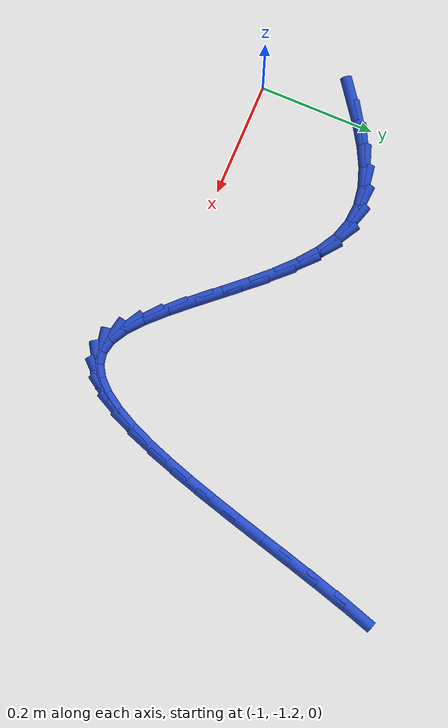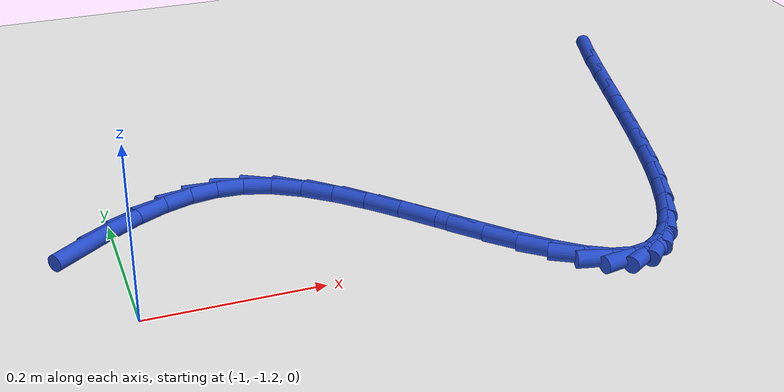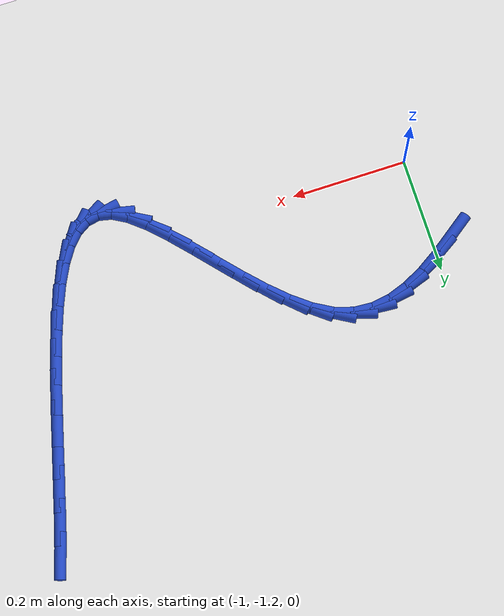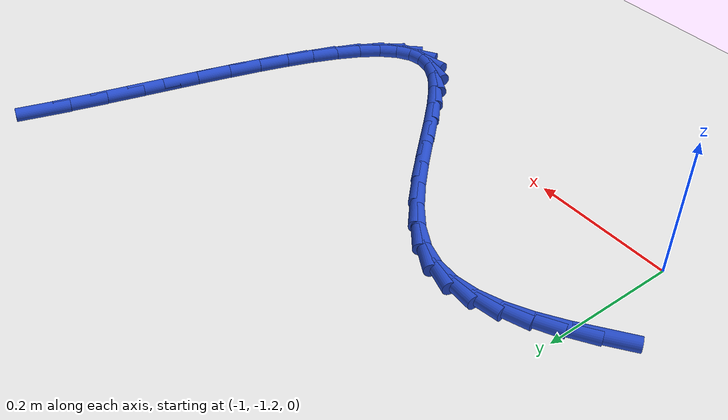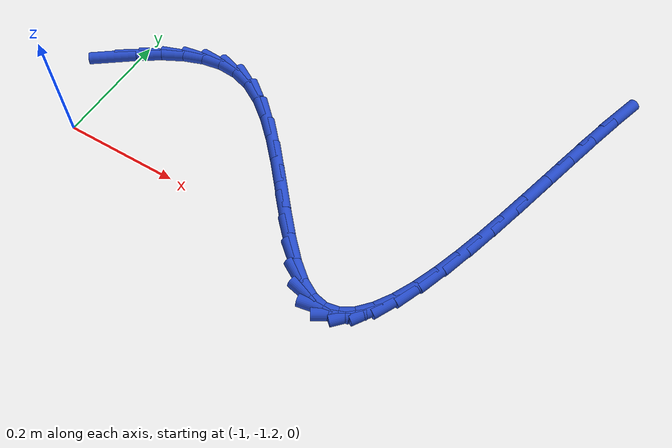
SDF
<sdf version="1.6">
 <world name="default">
  <model name="ground_plane">
   <static>1</static>
   <link name="link">
    <collision name="collision">
     <geometry><plane><normal>0 0 1</normal><size>100 100</size></plane></geometry>
     <surface><friction><ode><mu>100</mu><mu2>50</mu2></ode></friction></surface>
    </collision>
    <visual name="visual">
     <cast_shadows>0</cast_shadows>
     <geometry><plane><normal>0 0 1</normal><size>100 100</size></plane></geometry>
     <material>
      <script><uri>file://media/materials/scripts/gazebo.material</uri><name>Gazebo/WhiteGlow</name></script>
     </material>
    </visual>
   </link>
  </model>
  <model name="line">
   <link name="link_150">
    <pose>-1.036539433839793 -1.0515958325497545 0.01 0 1.57 0.6332076237584433</pose>
    <collision name="collision">
     <geometry><cylinder><radius>0.01</radius><length>0.08</length></cylinder></geometry>
    </collision>
    <visual name="visual">
     <material>
      <script><name>Gazebo/Blue</name><uri>file://media/materials/scripts/gazebo.material</uri></script>
     </material>
     <geometry><cylinder><radius>0.01</radius><length>0.08</length></cylinder></geometry>
    </visual>
   </link>
   <link name="link_151">
    <pose>-1.0014505979394939 -1.0258392555172586 0.01 0 1.57 0.5683706793248513</pose>
    <collision name="collision">
     <geometry><cylinder><radius>0.01</radius><length>0.08</length></cylinder></geometry>
    </collision>
    <visual name="visual">
     <material>
      <script><name>Gazebo/Blue</name><uri>file://media/materials/scripts/gazebo.material</uri></script>
     </material>
     <geometry><cylinder><radius>0.01</radius><length>0.08</length></cylinder></geometry>
    </visual>
   </link>
   <link name="link_152">
    <pose>-0.9670756667134821 -1.0038849413313753 0.01 0 1.57 0.47170963096601487</pose>
    <collision name="collision">
     <geometry><cylinder><radius>0.01</radius><length>0.08</length></cylinder></geometry>
    </collision>
    <visual name="visual">
     <material>
      <script><name>Gazebo/Blue</name><uri>file://media/materials/scripts/gazebo.material</uri></script>
     </material>
     <geometry><cylinder><radius>0.01</radius><length>0.08</length></cylinder></geometry>
    </visual>
   </link>
   <link name="link_153">
    <pose>-0.9332638066165657 -0.986636884806512 0.01 0 1.57 0.33528544571596725</pose>
    <collision name="collision">
     <geometry><cylinder><radius>0.01</radius><length>0.08</length></cylinder></geometry>
    </collision>
    <visual name="visual">
     <material>
      <script><name>Gazebo/Blue</name><uri>file://media/materials/scripts/gazebo.material</uri></script>
     </material>
     <geometry><cylinder><radius>0.01</radius><length>0.08</length></cylinder></geometry>
    </visual>
   </link>
   <link name="link_154">
    <pose>-0.899864184103553 -0.9749990807570772 0.01 0 1.57 0.1533971016318187</pose>
    <collision name="collision">
     <geometry><cylinder><radius>0.01</radius><length>0.08</length></cylinder></geometry>
    </collision>
    <visual name="visual">
     <material>
      <script><name>Gazebo/Blue</name><uri>file://media/materials/scripts/gazebo.material</uri></script>
     </material>
     <geometry><cylinder><radius>0.01</radius><length>0.08</length></cylinder></geometry>
    </visual>
   </link>
   <link name="link_155">
    <pose>-0.8667259656292521 -0.9698755239974786 0.01 0 1.57 -0.06936623940054967</pose>
    <collision name="collision">
     <geometry><cylinder><radius>0.01</radius><length>0.08</length></cylinder></geometry>
    </collision>
    <visual name="visual">
     <material>
      <script><name>Gazebo/Blue</name><uri>file://media/materials/scripts/gazebo.material</uri></script>
     </material>
     <geometry><cylinder><radius>0.01</radius><length>0.08</length></cylinder></geometry>
    </visual>
   </link>
   <link name="link_156">
    <pose>-0.8336983176484711 -0.9721702093421238 0.01 0 1.57 -0.3106487744566474</pose>
    <collision name="collision">
     <geometry><cylinder><radius>0.01</radius><length>0.08</length></cylinder></geometry>
    </collision>
    <visual name="visual">
     <material>
      <script><name>Gazebo/Blue</name><uri>file://media/materials/scripts/gazebo.material</uri></script>
     </material>
     <geometry><cylinder><radius>0.01</radius><length>0.08</length></cylinder></geometry>
    </visual>
   </link>
   <link name="link_157">
    <pose>-0.8006304989725437 -0.9827864010165375 0.01 0 1.57 -0.5245626051863317</pose>
    <collision name="collision">
     <geometry><cylinder><radius>0.01</radius><length>0.08</length></cylinder></geometry>
    </collision>
    <visual name="visual">
     <material>
      <script><name>Gazebo/Blue</name><uri>file://media/materials/scripts/gazebo.material</uri></script>
     </material>
     <geometry><cylinder><radius>0.01</radius><length>0.08</length></cylinder></geometry>
    </visual>
   </link>
   <link name="link_158">
    <pose>-0.767453092630725 -1.001984045739086 0.01 0 1.57 -0.669480758926945</pose>
    <collision name="collision">
     <geometry><cylinder><radius>0.01</radius><length>0.08</length></cylinder></geometry>
    </collision>
    <visual name="visual">
     <material>
      <script><name>Gazebo/Blue</name><uri>file://media/materials/scripts/gazebo.material</uri></script>
     </material>
     <geometry><cylinder><radius>0.01</radius><length>0.08</length></cylinder></geometry>
    </visual>
   </link>
   <link name="link_159">
    <pose>-0.734327113021428 -1.0282002564184147 0.01 0 1.57 -0.7617084103451789</pose>
    <collision name="collision">
     <geometry><cylinder><radius>0.01</radius><length>0.08</length></cylinder></geometry>
    </collision>
    <visual name="visual">
     <material>
      <script><name>Gazebo/Blue</name><uri>file://media/materials/scripts/gazebo.material</uri></script>
     </material>
     <geometry><cylinder><radius>0.01</radius><length>0.08</length></cylinder></geometry>
    </visual>
   </link>
   <link name="link_160">
    <pose>-0.7014541058742287 -1.059551521731024 0.01 0 1.57 -0.8179780572931746</pose>
    <collision name="collision">
     <geometry><cylinder><radius>0.01</radius><length>0.08</length></cylinder></geometry>
    </collision>
    <visual name="visual">
     <material>
      <script><name>Gazebo/Blue</name><uri>file://media/materials/scripts/gazebo.material</uri></script>
     </material>
     <geometry><cylinder><radius>0.01</radius><length>0.08</length></cylinder></geometry>
    </visual>
   </link>
   <link name="link_161">
    <pose>-0.6690356169187045 -1.094154330353415 0.01 0 1.57 -0.8474505780124517</pose>
    <collision name="collision">
     <geometry><cylinder><radius>0.01</radius><length>0.08</length></cylinder></geometry>
    </collision>
    <visual name="visual">
     <material>
      <script><name>Gazebo/Blue</name><uri>file://media/materials/scripts/gazebo.material</uri></script>
     </material>
     <geometry><cylinder><radius>0.01</radius><length>0.08</length></cylinder></geometry>
    </visual>
   </link>
   <link name="link_162">
    <pose>-0.6372731918844307 -1.1301251709620879 0.01 0 1.57 -0.8538644253982892</pose>
    <collision name="collision">
     <geometry><cylinder><radius>0.01</radius><length>0.08</length></cylinder></geometry>
    </collision>
    <visual name="visual">
     <material>
      <script><name>Gazebo/Blue</name><uri>file://media/materials/scripts/gazebo.material</uri></script>
     </material>
     <geometry><cylinder><radius>0.01</radius><length>0.08</length></cylinder></geometry>
    </visual>
   </link>
   <link name="link_163">
    <pose>-0.6063683765009844 -1.1655805322335444 0.01 0 1.57 -0.8363969394487794</pose>
    <collision name="collision">
     <geometry><cylinder><radius>0.01</radius><length>0.08</length></cylinder></geometry>
    </collision>
    <visual name="visual">
     <material>
      <script><name>Gazebo/Blue</name><uri>file://media/materials/scripts/gazebo.material</uri></script>
     </material>
     <geometry><cylinder><radius>0.01</radius><length>0.08</length></cylinder></geometry>
    </visual>
   </link>
   <link name="link_164">
    <pose>-0.576522716497942 -1.1986369028442847 0.01 0 1.57 -0.7886916242055491</pose>
    <collision name="collision">
     <geometry><cylinder><radius>0.01</radius><length>0.08</length></cylinder></geometry>
    </collision>
    <visual name="visual">
     <material>
      <script><name>Gazebo/Blue</name><uri>file://media/materials/scripts/gazebo.material</uri></script>
     </material>
     <geometry><cylinder><radius>0.01</radius><length>0.08</length></cylinder></geometry>
    </visual>
   </link>
   <link name="link_165">
    <pose>-0.5479377576048795 -1.2274107714708093 0.01 0 1.57 -0.6948600115909518</pose>
    <collision name="collision">
     <geometry><cylinder><radius>0.01</radius><length>0.08</length></cylinder></geometry>
    </collision>
    <visual name="visual">
     <material>
      <script><name>Gazebo/Blue</name><uri>file://media/materials/scripts/gazebo.material</uri></script>
     </material>
     <geometry><cylinder><radius>0.01</radius><length>0.08</length></cylinder></geometry>
    </visual>
   </link>
   <link name="link_166">
    <pose>-0.5208150455513738 -1.2500186267896203 0.01 0 1.57 -0.5194533173600978</pose>
    <collision name="collision">
     <geometry><cylinder><radius>0.01</radius><length>0.08</length></cylinder></geometry>
    </collision>
    <visual name="visual">
     <material>
      <script><name>Gazebo/Blue</name><uri>file://media/materials/scripts/gazebo.material</uri></script>
     </material>
     <geometry><cylinder><radius>0.01</radius><length>0.08</length></cylinder></geometry>
    </visual>
   </link>
   <link name="link_167">
    <pose>-0.4953561260670015 -1.2645769574772165 0.01 0 1.57 -0.21084372561759865</pose>
    <collision name="collision">
     <geometry><cylinder><radius>0.01</radius><length>0.08</length></cylinder></geometry>
    </collision>
    <visual name="visual">
     <material>
      <script><name>Gazebo/Blue</name><uri>file://media/materials/scripts/gazebo.material</uri></script>
     </material>
     <geometry><cylinder><radius>0.01</radius><length>0.08</length></cylinder></geometry>
    </visual>
   </link>
   <link name="link_168">
    <pose>-0.4717011564036104 -1.269639704294607 0.01 0 1.57 0.1849236203844235</pose>
    <collision name="collision">
     <geometry><cylinder><radius>0.01</radius><length>0.08</length></cylinder></geometry>
    </collision>
    <visual name="visual">
     <material>
      <script><name>Gazebo/Blue</name><uri>file://media/materials/scripts/gazebo.material</uri></script>
     </material>
     <geometry><cylinder><radius>0.01</radius><length>0.08</length></cylinder></geometry>
    </visual>
   </link>
   <link name="link_169">
    <pose>-0.4497417447813019 -1.2655319594641818 0.01 0 1.57 0.5491482637535319</pose>
    <collision name="collision">
     <geometry><cylinder><radius>0.01</radius><length>0.08</length></cylinder></geometry>
    </collision>
    <visual name="visual">
     <material>
      <script><name>Gazebo/Blue</name><uri>file://media/materials/scripts/gazebo.material</uri></script>
     </material>
     <geometry><cylinder><radius>0.01</radius><length>0.08</length></cylinder></geometry>
    </visual>
   </link>
   <link name="link_170">
    <pose>-0.42930660427147266 -1.253027003776035 0.01 0 1.57 0.8120865861263893</pose>
    <collision name="collision">
     <geometry><cylinder><radius>0.01</radius><length>0.08</length></cylinder></geometry>
    </collision>
    <visual name="visual">
     <material>
      <script><name>Gazebo/Blue</name><uri>file://media/materials/scripts/gazebo.material</uri></script>
     </material>
     <geometry><cylinder><radius>0.01</radius><length>0.08</length></cylinder></geometry>
    </visual>
   </link>
   <link name="link_171">
    <pose>-0.41022444794141805 -1.2328981180494816 0.01 0 1.57 0.9850011352458738</pose>
    <collision name="collision">
     <geometry><cylinder><radius>0.01</radius><length>0.08</length></cylinder></geometry>
    </collision>
    <visual name="visual">
     <material>
      <script><name>Gazebo/Blue</name><uri>file://media/materials/scripts/gazebo.material</uri></script>
     </material>
     <geometry><cylinder><radius>0.01</radius><length>0.08</length></cylinder></geometry>
    </visual>
   </link>
   <link name="link_172">
    <pose>-0.3923239888584336 -1.2059185831038393 0.01 0 1.57 1.098436159939714</pose>
    <collision name="collision">
     <geometry><cylinder><radius>0.01</radius><length>0.08</length></cylinder></geometry>
    </collision>
    <visual name="visual">
     <material>
      <script><name>Gazebo/Blue</name><uri>file://media/materials/scripts/gazebo.material</uri></script>
     </material>
     <geometry><cylinder><radius>0.01</radius><length>0.08</length></cylinder></geometry>
    </visual>
   </link>
   <link name="link_173">
    <pose>-0.37543394008981473 -1.1728616797584226 0.01 0 1.57 1.1745139575178067</pose>
    <collision name="collision">
     <geometry><cylinder><radius>0.01</radius><length>0.08</length></cylinder></geometry>
    </collision>
    <visual name="visual">
     <material>
      <script><name>Gazebo/Blue</name><uri>file://media/materials/scripts/gazebo.material</uri></script>
     </material>
     <geometry><cylinder><radius>0.01</radius><length>0.08</length></cylinder></geometry>
    </visual>
   </link>
   <link name="link_174">
    <pose>-0.35938301470285705 -1.1345006888325488 0.01 0 1.57 1.2264374951098471</pose>
    <collision name="collision">
     <geometry><cylinder><radius>0.01</radius><length>0.08</length></cylinder></geometry>
    </collision>
    <visual name="visual">
     <material>
      <script><name>Gazebo/Blue</name><uri>file://media/materials/scripts/gazebo.material</uri></script>
     </material>
     <geometry><cylinder><radius>0.01</radius><length>0.08</length></cylinder></geometry>
    </visual>
   </link>
   <link name="link_175">
    <pose>-0.3439999257648559 -1.091608891145534 0.01 0 1.57 1.2618955940977192</pose>
    <collision name="collision">
     <geometry><cylinder><radius>0.01</radius><length>0.08</length></cylinder></geometry>
    </collision>
    <visual name="visual">
     <material>
      <script><name>Gazebo/Blue</name><uri>file://media/materials/scripts/gazebo.material</uri></script>
     </material>
     <geometry><cylinder><radius>0.01</radius><length>0.08</length></cylinder></geometry>
    </visual>
   </link>
   <link name="link_176">
    <pose>-0.3291133863431069 -1.044959567516694 0.01 0 1.57 1.2854280108528695</pose>
    <collision name="collision">
     <geometry><cylinder><radius>0.01</radius><length>0.08</length></cylinder></geometry>
    </collision>
    <visual name="visual">
     <material>
      <script><name>Gazebo/Blue</name><uri>file://media/materials/scripts/gazebo.material</uri></script>
     </material>
     <geometry><cylinder><radius>0.01</radius><length>0.08</length></cylinder></geometry>
    </visual>
   </link>
   <link name="link_177">
    <pose>-0.3145521095049053 -0.9953259987653451 0.01 0 1.57 1.299741287064111</pose>
    <collision name="collision">
     <geometry><cylinder><radius>0.01</radius><length>0.08</length></cylinder></geometry>
    </collision>
    <visual name="visual">
     <material>
      <script><name>Gazebo/Blue</name><uri>file://media/materials/scripts/gazebo.material</uri></script>
     </material>
     <geometry><cylinder><radius>0.01</radius><length>0.08</length></cylinder></geometry>
    </visual>
   </link>
   <link name="link_178">
    <pose>-0.3001448083175468 -0.9434814657108035 0.01 0 1.57 1.3064126471703135</pose>
    <collision name="collision">
     <geometry><cylinder><radius>0.01</radius><length>0.08</length></cylinder></geometry>
    </collision>
    <visual name="visual">
     <material>
      <script><name>Gazebo/Blue</name><uri>file://media/materials/scripts/gazebo.material</uri></script>
     </material>
     <geometry><cylinder><radius>0.01</radius><length>0.08</length></cylinder></geometry>
    </visual>
   </link>
   <link name="link_179">
    <pose>-0.28572019584832686 -0.8901992491723857 0.01 0 1.57 1.3062618685649354</pose>
    <collision name="collision">
     <geometry><cylinder><radius>0.01</radius><length>0.08</length></cylinder></geometry>
    </collision>
    <visual name="visual">
     <material>
      <script><name>Gazebo/Blue</name><uri>file://media/materials/scripts/gazebo.material</uri></script>
     </material>
     <geometry><cylinder><radius>0.01</radius><length>0.08</length></cylinder></geometry>
    </visual>
   </link>
   <link name="link_180">
    <pose>-0.2711069851645409 -0.8362526299694077 0.01 0 1.57 1.2995362226315956</pose>
    <collision name="collision">
     <geometry><cylinder><radius>0.01</radius><length>0.08</length></cylinder></geometry>
    </collision>
    <visual name="visual">
     <material>
      <script><name>Gazebo/Blue</name><uri>file://media/materials/scripts/gazebo.material</uri></script>
     </material>
     <geometry><cylinder><radius>0.01</radius><length>0.08</length></cylinder></geometry>
    </visual>
   </link>
   <link name="link_181">
    <pose>-0.25613388933348435 -0.7824148889211855 0.01 0 1.57 1.2859776493413653</pose>
    <collision name="collision">
     <geometry><cylinder><radius>0.01</radius><length>0.08</length></cylinder></geometry>
    </collision>
    <visual name="visual">
     <material>
      <script><name>Gazebo/Blue</name><uri>file://media/materials/scripts/gazebo.material</uri></script>
     </material>
     <geometry><cylinder><radius>0.01</radius><length>0.08</length></cylinder></geometry>
    </visual>
   </link>
   <link name="link_182">
    <pose>-0.24062962142245287 -0.7294593068470355 0.01 0 1.57 1.2647990182551765</pose>
    <collision name="collision">
     <geometry><cylinder><radius>0.01</radius><length>0.08</length></cylinder></geometry>
    </collision>
    <visual name="visual">
     <material>
      <script><name>Gazebo/Blue</name><uri>file://media/materials/scripts/gazebo.material</uri></script>
     </material>
     <geometry><cylinder><radius>0.01</radius><length>0.08</length></cylinder></geometry>
    </visual>
   </link>
  </model>
 </world>
</sdf>
